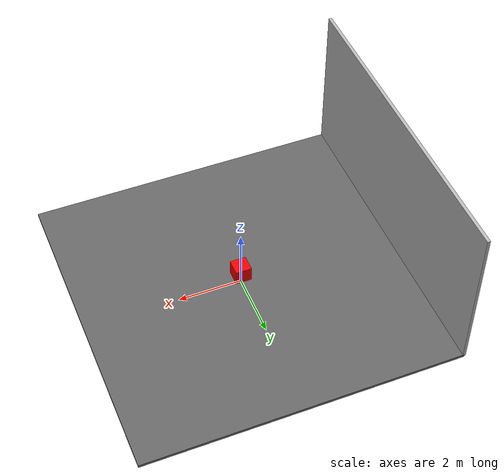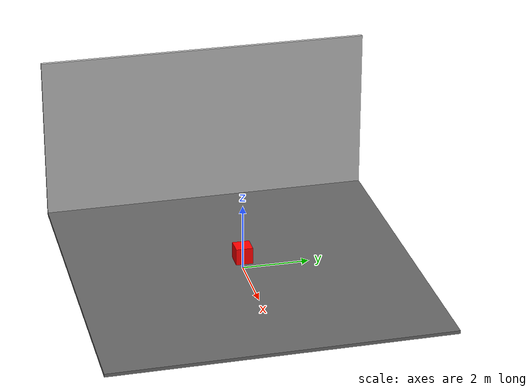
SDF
<?xml version="1.0"?>
<sdf version="1.6">
  <world name="default">
    <physics type="ode">
      <gravity>0 0 -9.81</gravity>
      <max_step_size>0.001</max_step_size>
    </physics>

    <!-- Caja que oscilará verticalmente sobre el agua -->
    <model name="box">
      <pose>0.0 0.0 0.5 0 0 0</pose>  <!-- Posicionada cerca de la superficie del agua -->
      <static>false</static>
      <link name="link">
        <inertial>
          <mass>5.0</mass>
          <inertia>
            <ixx>0.00664</ixx>
            <ixy>0.0</ixy>
            <ixz>0.0</ixz>
            <iyy>0.00664</iyy>
            <iyz>0.0</iyz>
            <izz>0.00664</izz>
          </inertia>
        </inertial>
        <collision name="box_collision">
          <surface>
            <contact>
              <collide_bitmask>0x01</collide_bitmask>
            </contact>
            <friction>
              <ode>
                <mu>100</mu>
                <mu2>50</mu2>
              </ode>
            </friction>
          </surface>
          <geometry>
            <box>
              <size>0.5 0.5 0.5</size>
            </box>
          </geometry>
        </collision>
        <visual name="box_visual">
          <geometry>
            <box>
              <size>0.5 0.5 0.5</size>
            </box>
          </geometry>
          <material>
            <ambient>1 0 0 1</ambient>
          </material>
        </visual>
      </link>

      <!-- Plugin para el movimiento oscilatorio -->
      <plugin name="sinusoidal_oscillation" filename="libHarmonicOscillationPlugin.so">
        <amplitude>1.0</amplitude>  <!-- Amplitud de oscilación en metros -->
        <period>2.0</period>        <!-- Periodo de oscilación en segundos -->
        <direction>0 0 1</direction> <!-- Oscilación vertical -->
        <offset>0.5</offset>        <!-- Centro de oscilación (altura) -->
      </plugin>
    </model>

    <!-- Contenedor grande (como una piscina) -->
    <model name="biorob_pool">
      <static>true</static>
      <pose>0.0 0.0 -0.05 0.0 0.0 0.0</pose>
      <!-- Piso más grande -->
      <link name="floor">
        <static>true</static>
        <pose>0.0 0.0 0.0 0.0 0.0 0.0</pose>
        <inertial>
          <mass>0</mass>
          <inertia><ixx>0</ixx><iyy>0</iyy><izz>0</izz></inertia>
        </inertial>
        <collision name="floor_collision">
          <geometry>
            <box>
              <size>10 10 0.1</size>
            </box>
          </geometry>
        </collision>
        <visual name="floor_visual">
          <geometry>
            <box>
              <size>10 10 0.1</size>
            </box>
          </geometry>
          <material>
            <ambient>0.4 0.4 0.4 1</ambient>
          </material>
        </visual>
      </link>

      <!-- Paredes más grandes (5m de altura) -->
      <link name="side_x_0">
        <static>true</static>
        <pose>-5.0 0.0 2.5 0.0 0.0 0.0</pose>
        <collision name="side_x_0_collision">
          <geometry>
            <box>
              <size>0.1 10 5</size>
            </box>
          </geometry>
        </collision>
        <visual name="side_x_0_visual">
          <geometry>
            <box>
              <size>0.1 10 5</size>
            </box>
          </geometry>
        </visual>
      </link>

      <!-- Repetir para las otras 3 paredes (similar) -->
      <link name="side_x_1">
        <static>true</static>
        <pose>5.0 0.0 2.5 0.0 0.0 0.0</pose>
        <collision name="side_x_1_collision">
          <geometry><box><size>0.1 10 5</size></box></geometry>
        </collision>
      </link>
      <link name="side_y_0">
        <static>true</static>
        <pose>0.0 5.0 2.5 0.0 0.0 0.0</pose>
        <collision name="side_y_0_collision">
          <geometry><box><size>10 0.1 5</size></box></geometry>
        </collision>
      </link>
      <link name="side_y_1">
        <static>true</static>
        <pose>0.0 -5.0 2.5 0.0 0.0 0.0</pose>
        <collision name="side_y_1_collision">
          <geometry><box><size>10 0.1 5</size></box></geometry>
        </collision>
      </link>
    </model>

    <!-- Configuración del fluido como capa horizontal (piscina) -->
    <plugin name="FluidPlugin" filename="libFluidSimulator.so">
      <fluidConfiguration>
        <timeStepSize>0.001</timeStepSize>
        <particleRadius>0.025</particleRadius>
        <simulationMethod>4</simulationMethod>
        <gravitation>0 0 -9.81</gravitation>
        <cflMethod>0</cflMethod>
        <cflFactor>0.45</cflFactor>
        <cflMaxTimeStepSize>0.01</cflMaxTimeStepSize>
        <maxIterations>100</maxIterations>
        <maxError>0.05</maxError>
        <maxIterationsV>100</maxIterationsV>
        <maxErrorV>0.1</maxErrorV>
        <stiffness>50000</stiffness>
        <exponent>7</exponent>
        <enableDivergenceSolver>true</enableDivergenceSolver>
        <velocityUpdateMethod>0</velocityUpdateMethod>
        <boundaryHandlingMethod>0</boundaryHandlingMethod>
        <outputPath>/home/$USER/falling_box_gazebo</outputPath>
      </fluidConfiguration>
      <fluid>
        <viscosity>0.01</viscosity>
        <viscosityMethod>1</viscosityMethod>
      </fluid>
      <fluidBlock>
        <denseMode>0</denseMode>
        <start>-4 -4 0.0</start>
        <end>4 4 0.5</end>
      </fluidBlock>
    </plugin>
  </world>
</sdf>
